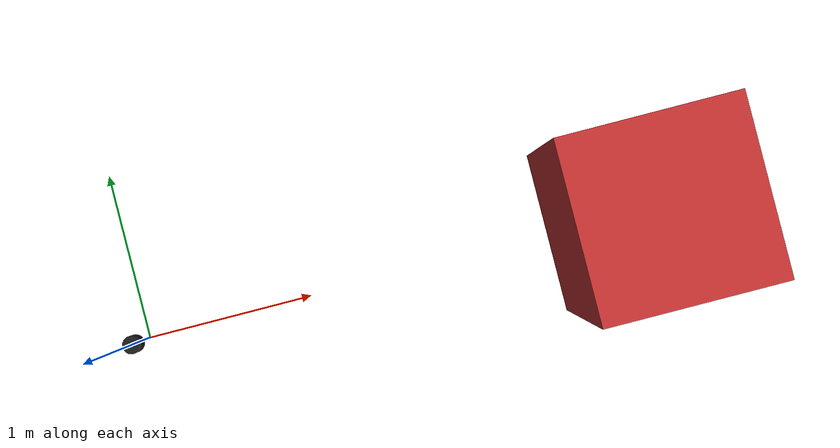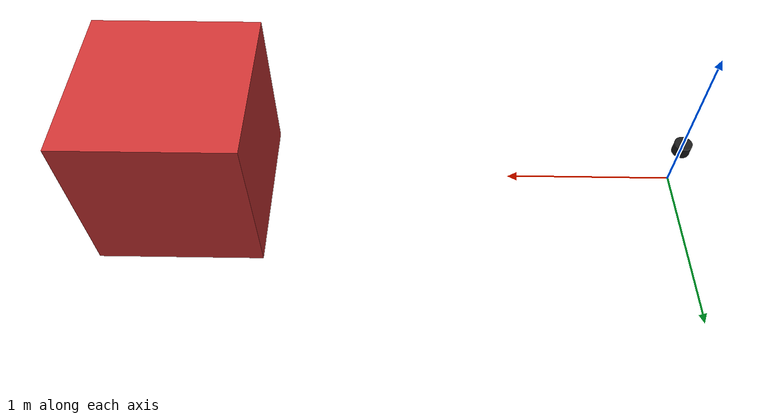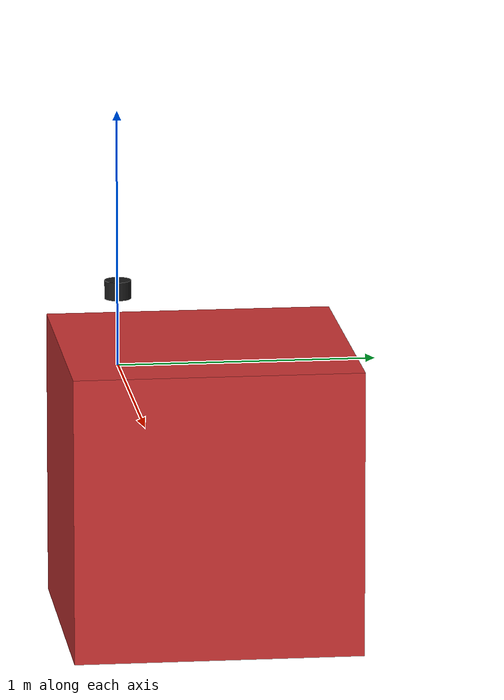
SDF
<?xml version="1.0" ?>
<sdf version="1.9">
  <world name="radarays_dynamic_cpu">
    <plugin
      filename="gz-sim-physics-system"
      name="gz::sim::systems::Physics" />
    <plugin
      filename="gz-sim-user-commands-system"
      name="gz::sim::systems::UserCommands" />
    <plugin
      filename="gz-sim-scene-broadcaster-system"
      name="gz::sim::systems::SceneBroadcaster" />

    <!-- Faster rate limit / tighter deltas than the static world: the map
         needs to keep up with the moving box, matching
         rmagine_gazebo_plugins/worlds/gz_embree_dynamic.sdf. -->
    <plugin name="rmagine_embree_map_system" filename="librmagine_embree_map_system.so">
      <ignore_model>sensor_model</ignore_model>
      <update>
        <rate_limit>30</rate_limit>
        <delta_trans>0.001</delta_trans>
        <delta_rot>0.001</delta_rot>
        <delta_scale>0.001</delta_scale>
      </update>
    </plugin>

    <plugin name="rmagine_embree_sensor_system" filename="librmagine_embree_sensor_system.so"/>

    <light name="sun" type="directional">
      <cast_shadows>true</cast_shadows>
      <pose>0 0 10 0 0 0</pose>
      <diffuse>0.8 0.8 0.8 1</diffuse>
      <specular>0.2 0.2 0.2 1</specular>
      <direction>-0.4 0.2 -0.9</direction>
    </light>

    <!-- Same oscillating box used to validate rmagine_gazebo_plugins's
         dynamic path (test_box_mover_system): x-only motion keeps the
         scenario easy to reason about while debugging. -->
    <model name="target_box">
      <static>false</static>
      <pose>3 0 0.3 0 0 0</pose>
      <plugin name="test_box_mover_system" filename="libtest_box_mover_system.so">
        <axis>1 0 0</axis>
        <amplitude>1.0</amplitude>
        <period>6.0</period>
      </plugin>
      <link name="link">
        <gravity>false</gravity>
        <velocity_decay>
          <linear>1.0</linear>
          <angular>1.0</angular>
        </velocity_decay>
        <visual name="visual">
          <geometry>
            <box>
              <size>1 1 1</size>
            </box>
          </geometry>
          <material>
            <ambient>0.8 0.2 0.2 1</ambient>
            <diffuse>0.8 0.2 0.2 1</diffuse>
          </material>
        </visual>
      </link>
    </model>

    <model name="sensor_model">
      <static>true</static>
      <pose>0 0 0.3 0 0 0</pose>
      <plugin name="radarays_embree_sensor_system" filename="libradarays_embree_sensor_system.so">
        <map_key>default</map_key>
        <frame>radar</frame>
        <topic_image>radar/image</topic_image>
        <update_rate>4</update_rate>
        <min_angle>-1.0472</min_angle>
        <max_angle>1.0472</max_angle>
        <samples>400</samples>
        <range_max>20.0</range_max>
        <n_cells>1024</n_cells>
      </plugin>
      <link name="radar">
        <sensor name="radar_lidar_sensor" type="custom" gz:type="rmagine_embree">
          <map_key>default</map_key>
          <frame>radar</frame>
          <topic_scan>radar/scan</topic_scan>
          <topic_points>radar/points</topic_points>
          <update_rate>4</update_rate>
          <lidar>
            <scan>
              <horizontal>
                <min_angle>-1.0472</min_angle>
                <increment>0.0052486216</increment>
                <samples>400</samples>
              </horizontal>
            </scan>
            <range>
              <min>0.2</min>
              <max>20.0</max>
            </range>
          </lidar>
        </sensor>
        <visual name="radar_visual">
          <geometry>
            <cylinder>
              <radius>0.0516</radius>
              <length>0.0717</length>
            </cylinder>
          </geometry>
          <material>
            <ambient>0.1 0.1 0.1 1</ambient>
            <diffuse>0.1 0.1 0.1 1</diffuse>
          </material>
        </visual>
      </link>
    </model>
  </world>
</sdf>
